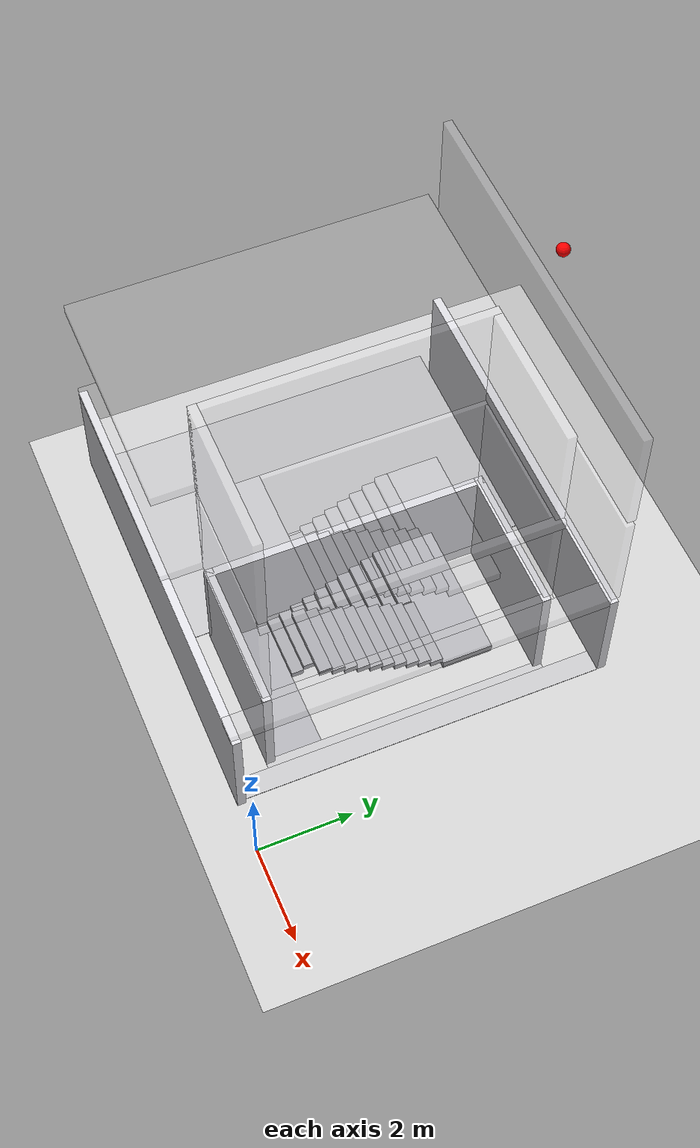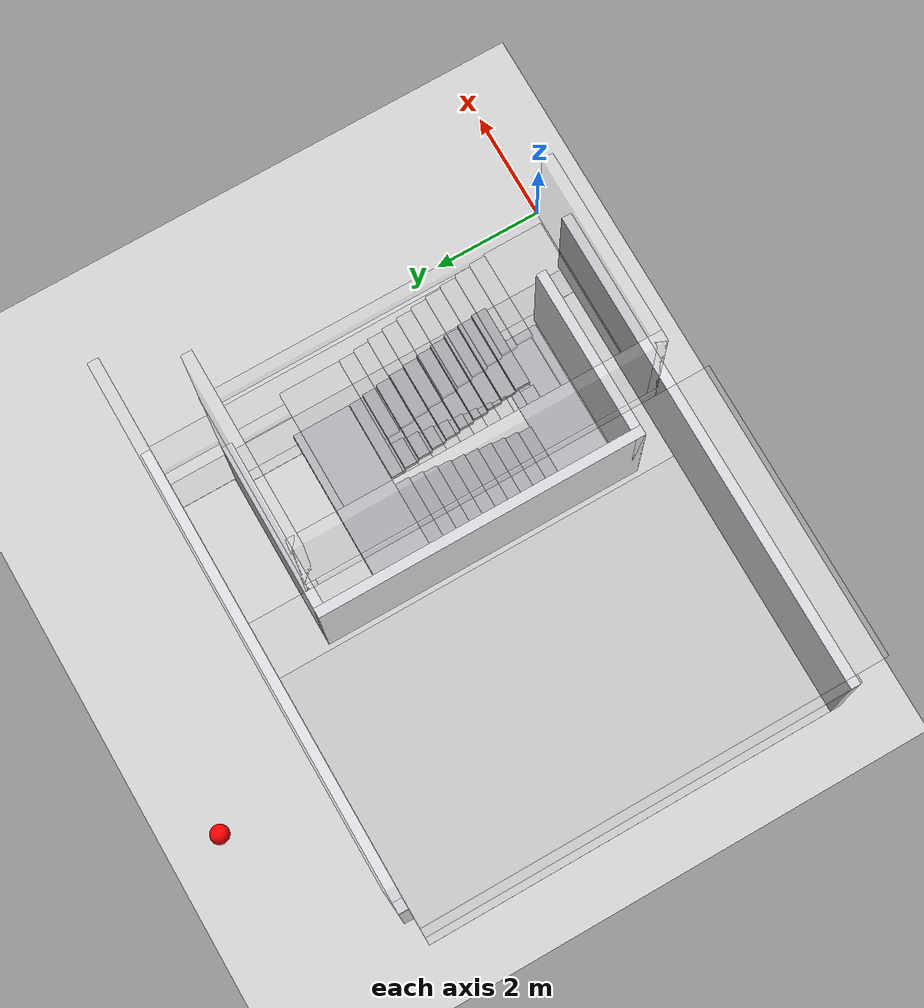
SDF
<sdf version="1.7">
 <world name="generated_world">
  <include><uri>model://sun</uri></include>
  <include><uri>model://ground_plane</uri></include>
  <model name="generated_building">
   <static>true</static>
   <link name="slab_floor_0_1">
    <pose>-7.4700 3.9250 -0.1100 0.0000 0.0000 0.0000</pose>
    <collision name="slab_floor_0_1_collision">
     <geometry><box><size>5.0600 7.8500 0.2200</size></box></geometry>
    </collision>
    <visual name="slab_floor_0_1_visual">
     <geometry><box><size>5.0600 7.8500 0.2200</size></box></geometry>
     <material><ambient>0.76 0.76 0.77 1</ambient><diffuse>0.76 0.76 0.77 1</diffuse></material>
    </visual>
    <gravity>false</gravity>
   </link>
   <link name="slab_floor_0_2">
    <pose>-1.3300 3.9250 -0.1100 0.0000 0.0000 0.0000</pose>
    <collision name="slab_floor_0_2_collision">
     <geometry><box><size>0.4600 7.8500 0.2200</size></box></geometry>
    </collision>
    <visual name="slab_floor_0_2_visual">
     <geometry><box><size>0.4600 7.8500 0.2200</size></box></geometry>
     <material><ambient>0.76 0.76 0.77 1</ambient><diffuse>0.76 0.76 0.77 1</diffuse></material>
    </visual>
    <gravity>false</gravity>
   </link>
   <link name="stair_edge_infill_floor_0">
    <pose>-1.6500 3.8500 -0.1100 0.0000 0.0000 0.0000</pose>
    <collision name="stair_edge_infill_floor_0_collision">
     <geometry><box><size>0.1800 6.0000 0.2200</size></box></geometry>
    </collision>
    <visual name="stair_edge_infill_floor_0_visual">
     <geometry><box><size>0.1800 6.0000 0.2200</size></box></geometry>
     <material><ambient>0.76 0.76 0.77 1</ambient><diffuse>0.76 0.76 0.77 1</diffuse></material>
    </visual>
    <gravity>false</gravity>
   </link>
   <link name="exterior_south_entrance_left">
    <pose>-5.5100 0.0900 1.2250 0.0000 0.0000 0.0000</pose>
    <collision name="exterior_south_entrance_left_collision">
     <geometry><box><size>8.9800 0.1800 2.4500</size></box></geometry>
    </collision>
    <visual name="exterior_south_entrance_left_visual">
     <geometry><box><size>8.9800 0.1800 2.4500</size></box></geometry>
     <material><ambient>0.86 0.86 0.88 1</ambient><diffuse>0.86 0.86 0.88 1</diffuse></material>
    </visual>
    <gravity>false</gravity>
   </link>
   <link name="floor_0_room_0_south_wall">
    <pose>-5.3000 7.9400 1.2250 0.0000 0.0000 0.0000</pose>
    <collision name="floor_0_room_0_south_wall_collision">
     <geometry><box><size>8.4000 0.1800 2.4500</size></box></geometry>
    </collision>
    <visual name="floor_0_room_0_south_wall_visual">
     <geometry><box><size>8.4000 0.1800 2.4500</size></box></geometry>
     <material><ambient>0.86 0.86 0.88 1</ambient><diffuse>0.86 0.86 0.88 1</diffuse></material>
    </visual>
    <gravity>false</gravity>
   </link>
   <link name="stair_core_floor_0_west">
    <pose>-4.7600 3.8500 1.2250 0.0000 0.0000 0.0000</pose>
    <collision name="stair_core_floor_0_west_collision">
     <geometry><box><size>0.1800 6.0000 2.4500</size></box></geometry>
    </collision>
    <visual name="stair_core_floor_0_west_visual">
     <geometry><box><size>0.1800 6.0000 2.4500</size></box></geometry>
     <material><ambient>0.86 0.86 0.88 1</ambient><diffuse>0.86 0.86 0.88 1</diffuse></material>
    </visual>
    <gravity>false</gravity>
   </link>
   <link name="stair_core_floor_0_south">
    <pose>-3.2500 0.9400 1.2250 0.0000 0.0000 0.0000</pose>
    <collision name="stair_core_floor_0_south_collision">
     <geometry><box><size>3.2000 0.1800 2.4500</size></box></geometry>
    </collision>
    <visual name="stair_core_floor_0_south_visual">
     <geometry><box><size>3.2000 0.1800 2.4500</size></box></geometry>
     <material><ambient>0.86 0.86 0.88 1</ambient><diffuse>0.86 0.86 0.88 1</diffuse></material>
    </visual>
    <gravity>false</gravity>
   </link>
   <link name="stair_core_floor_0_north">
    <pose>-3.2500 6.7600 1.2250 0.0000 0.0000 0.0000</pose>
    <collision name="stair_core_floor_0_north_collision">
     <geometry><box><size>3.2000 0.1800 2.4500</size></box></geometry>
    </collision>
    <visual name="stair_core_floor_0_north_visual">
     <geometry><box><size>3.2000 0.1800 2.4500</size></box></geometry>
     <material><ambient>0.86 0.86 0.88 1</ambient><diffuse>0.86 0.86 0.88 1</diffuse></material>
    </visual>
    <gravity>false</gravity>
   </link>
   <link name="slab_floor_1_1">
    <pose>-7.4700 3.9250 2.4900 0.0000 0.0000 0.0000</pose>
    <collision name="slab_floor_1_1_collision">
     <geometry><box><size>5.0600 7.8500 0.2200</size></box></geometry>
    </collision>
    <visual name="slab_floor_1_1_visual">
     <geometry><box><size>5.0600 7.8500 0.2200</size></box></geometry>
     <material><ambient>0.76 0.76 0.77 1</ambient><diffuse>0.76 0.76 0.77 1</diffuse></material>
     <transparency>0.80</transparency>
    </visual>
    <gravity>false</gravity>
   </link>
   <link name="slab_floor_1_2">
    <pose>-1.3300 3.9250 2.4900 0.0000 0.0000 0.0000</pose>
    <collision name="slab_floor_1_2_collision">
     <geometry><box><size>0.4600 7.8500 0.2200</size></box></geometry>
    </collision>
    <visual name="slab_floor_1_2_visual">
     <geometry><box><size>0.4600 7.8500 0.2200</size></box></geometry>
     <material><ambient>0.76 0.76 0.77 1</ambient><diffuse>0.76 0.76 0.77 1</diffuse></material>
     <transparency>0.80</transparency>
    </visual>
    <gravity>false</gravity>
   </link>
   <link name="stair_edge_infill_floor_1">
    <pose>-1.6500 3.8500 2.4900 0.0000 0.0000 0.0000</pose>
    <collision name="stair_edge_infill_floor_1_collision">
     <geometry><box><size>0.1800 6.0000 0.2200</size></box></geometry>
    </collision>
    <visual name="stair_edge_infill_floor_1_visual">
     <geometry><box><size>0.1800 6.0000 0.2200</size></box></geometry>
     <material><ambient>0.76 0.76 0.77 1</ambient><diffuse>0.76 0.76 0.77 1</diffuse></material>
     <transparency>0.80</transparency>
    </visual>
    <gravity>false</gravity>
   </link>
   <link name="floor_1_room_0_south_wall">
    <pose>-5.3000 7.9400 3.8250 0.0000 0.0000 0.0000</pose>
    <collision name="floor_1_room_0_south_wall_collision">
     <geometry><box><size>8.4000 0.1800 2.4500</size></box></geometry>
    </collision>
    <visual name="floor_1_room_0_south_wall_visual">
     <geometry><box><size>8.4000 0.1800 2.4500</size></box></geometry>
     <material><ambient>0.86 0.86 0.88 1</ambient><diffuse>0.86 0.86 0.88 1</diffuse></material>
     <transparency>0.80</transparency>
    </visual>
    <gravity>false</gravity>
   </link>
   <link name="stair_core_floor_1_west">
    <pose>-4.7600 3.8500 3.8250 0.0000 0.0000 0.0000</pose>
    <collision name="stair_core_floor_1_west_collision">
     <geometry><box><size>0.1800 6.0000 2.4500</size></box></geometry>
    </collision>
    <visual name="stair_core_floor_1_west_visual">
     <geometry><box><size>0.1800 6.0000 2.4500</size></box></geometry>
     <material><ambient>0.86 0.86 0.88 1</ambient><diffuse>0.86 0.86 0.88 1</diffuse></material>
     <transparency>0.80</transparency>
    </visual>
    <gravity>false</gravity>
   </link>
   <link name="stair_core_floor_1_south">
    <pose>-3.2500 0.9400 3.8250 0.0000 0.0000 0.0000</pose>
    <collision name="stair_core_floor_1_south_collision">
     <geometry><box><size>3.2000 0.1800 2.4500</size></box></geometry>
    </collision>
    <visual name="stair_core_floor_1_south_visual">
     <geometry><box><size>3.2000 0.1800 2.4500</size></box></geometry>
     <material><ambient>0.86 0.86 0.88 1</ambient><diffuse>0.86 0.86 0.88 1</diffuse></material>
     <transparency>0.80</transparency>
    </visual>
    <gravity>false</gravity>
   </link>
   <link name="stair_core_floor_1_north">
    <pose>-3.2500 6.7600 3.8250 0.0000 0.0000 0.0000</pose>
    <collision name="stair_core_floor_1_north_collision">
     <geometry><box><size>3.2000 0.1800 2.4500</size></box></geometry>
    </collision>
    <visual name="stair_core_floor_1_north_visual">
     <geometry><box><size>3.2000 0.1800 2.4500</size></box></geometry>
     <material><ambient>0.86 0.86 0.88 1</ambient><diffuse>0.86 0.86 0.88 1</diffuse></material>
     <transparency>0.80</transparency>
    </visual>
    <gravity>false</gravity>
   </link>
   <link name="slab_floor_2_1">
    <pose>-7.4700 3.9250 5.0900 0.0000 0.0000 0.0000</pose>
    <collision name="slab_floor_2_1_collision">
     <geometry><box><size>5.0600 7.8500 0.2200</size></box></geometry>
    </collision>
    <visual name="slab_floor_2_1_visual">
     <geometry><box><size>5.0600 7.8500 0.2200</size></box></geometry>
     <material><ambient>0.76 0.76 0.77 1</ambient><diffuse>0.76 0.76 0.77 1</diffuse></material>
     <transparency>0.80</transparency>
    </visual>
    <gravity>false</gravity>
   </link>
   <link name="stair_edge_infill_floor_2">
    <pose>-1.6500 3.8500 5.0900 0.0000 0.0000 0.0000</pose>
    <collision name="stair_edge_infill_floor_2_collision">
     <geometry><box><size>0.1800 6.0000 0.2200</size></box></geometry>
    </collision>
    <visual name="stair_edge_infill_floor_2_visual">
     <geometry><box><size>0.1800 6.0000 0.2200</size></box></geometry>
     <material><ambient>0.76 0.76 0.77 1</ambient><diffuse>0.76 0.76 0.77 1</diffuse></material>
     <transparency>0.80</transparency>
    </visual>
    <gravity>false</gravity>
   </link>
   <link name="floor_2_room_0_south_wall">
    <pose>-5.3000 7.9400 6.4250 0.0000 0.0000 0.0000</pose>
    <collision name="floor_2_room_0_south_wall_collision">
     <geometry><box><size>8.4000 0.1800 2.4500</size></box></geometry>
    </collision>
    <visual name="floor_2_room_0_south_wall_visual">
     <geometry><box><size>8.4000 0.1800 2.4500</size></box></geometry>
     <material><ambient>0.86 0.86 0.88 1</ambient><diffuse>0.86 0.86 0.88 1</diffuse></material>
     <transparency>0.80</transparency>
    </visual>
    <gravity>false</gravity>
   </link>
   <link name="stair_core_floor_2_west">
    <pose>-4.7600 3.8500 6.4250 0.0000 0.0000 0.0000</pose>
    <collision name="stair_core_floor_2_west_collision">
     <geometry><box><size>0.1800 6.0000 2.4500</size></box></geometry>
    </collision>
    <visual name="stair_core_floor_2_west_visual">
     <geometry><box><size>0.1800 6.0000 2.4500</size></box></geometry>
     <material><ambient>0.86 0.86 0.88 1</ambient><diffuse>0.86 0.86 0.88 1</diffuse></material>
     <transparency>0.80</transparency>
    </visual>
    <gravity>false</gravity>
   </link>
   <link name="stair_core_floor_2_south">
    <pose>-3.2500 0.9400 6.4250 0.0000 0.0000 0.0000</pose>
    <collision name="stair_core_floor_2_south_collision">
     <geometry><box><size>3.2000 0.1800 2.4500</size></box></geometry>
    </collision>
    <visual name="stair_core_floor_2_south_visual">
     <geometry><box><size>3.2000 0.1800 2.4500</size></box></geometry>
     <material><ambient>0.86 0.86 0.88 1</ambient><diffuse>0.86 0.86 0.88 1</diffuse></material>
     <transparency>0.80</transparency>
    </visual>
    <gravity>false</gravity>
   </link>
   <link name="stair_core_floor_2_north">
    <pose>-3.2500 6.7600 6.4250 0.0000 0.0000 0.0000</pose>
    <collision name="stair_core_floor_2_north_collision">
     <geometry><box><size>3.2000 0.1800 2.4500</size></box></geometry>
    </collision>
    <visual name="stair_core_floor_2_north_visual">
     <geometry><box><size>3.2000 0.1800 2.4500</size></box></geometry>
     <material><ambient>0.86 0.86 0.88 1</ambient><diffuse>0.86 0.86 0.88 1</diffuse></material>
     <transparency>0.80</transparency>
    </visual>
    <gravity>false</gravity>
   </link>
   <link name="stair_floor_landing_floor_0">
    <pose>-3.2500 1.5500 -0.0900 0.0000 0.0000 0.0000</pose>
    <collision name="stair_floor_landing_floor_0_collision">
     <geometry><box><size>3.0200 1.0000 0.1800</size></box></geometry>
    </collision>
    <visual name="stair_floor_landing_floor_0_visual">
     <geometry><box><size>3.0200 1.0000 0.1800</size></box></geometry>
     <material><ambient>0.68 0.68 0.70 1</ambient><diffuse>0.68 0.68 0.70 1</diffuse></material>
    </visual>
    <gravity>false</gravity>
   </link>
   <link name="stair_floor_landing_floor_1">
    <pose>-3.2500 1.5500 2.5100 0.0000 0.0000 0.0000</pose>
    <collision name="stair_floor_landing_floor_1_collision">
     <geometry><box><size>3.0200 1.0000 0.1800</size></box></geometry>
    </collision>
    <visual name="stair_floor_landing_floor_1_visual">
     <geometry><box><size>3.0200 1.0000 0.1800</size></box></geometry>
     <material><ambient>0.68 0.68 0.70 1</ambient><diffuse>0.68 0.68 0.70 1</diffuse></material>
     <transparency>0.80</transparency>
    </visual>
    <gravity>false</gravity>
   </link>
   <link name="stair_floor_landing_floor_2">
    <pose>-3.2500 1.5500 5.1100 0.0000 0.0000 0.0000</pose>
    <collision name="stair_floor_landing_floor_2_collision">
     <geometry><box><size>3.0200 1.0000 0.1800</size></box></geometry>
    </collision>
    <visual name="stair_floor_landing_floor_2_visual">
     <geometry><box><size>3.0200 1.0000 0.1800</size></box></geometry>
     <material><ambient>0.68 0.68 0.70 1</ambient><diffuse>0.68 0.68 0.70 1</diffuse></material>
     <transparency>0.80</transparency>
    </visual>
    <gravity>false</gravity>
   </link>
   <link name="stair_flight_a_floor_0_step_0">
    <pose>-4.0150 2.1800 0.0650 0.0000 0.0000 0.0000</pose>
    <collision name="stair_flight_a_floor_0_step_0_collision">
     <geometry><box><size>1.4300 0.2600 0.1300</size></box></geometry>
    </collision>
    <visual name="stair_flight_a_floor_0_step_0_visual">
     <geometry><box><size>1.4300 0.2600 0.1300</size></box></geometry>
     <material><ambient>0.64 0.64 0.66 1</ambient><diffuse>0.64 0.64 0.66 1</diffuse></material>
    </visual>
    <gravity>false</gravity>
   </link>
   <link name="stair_flight_a_floor_0_step_1">
    <pose>-4.0150 2.4400 0.1950 0.0000 0.0000 0.0000</pose>
    <collision name="stair_flight_a_floor_0_step_1_collision">
     <geometry><box><size>1.4300 0.2600 0.1300</size></box></geometry>
    </collision>
    <visual name="stair_flight_a_floor_0_step_1_visual">
     <geometry><box><size>1.4300 0.2600 0.1300</size></box></geometry>
     <material><ambient>0.64 0.64 0.66 1</ambient><diffuse>0.64 0.64 0.66 1</diffuse></material>
    </visual>
    <gravity>false</gravity>
   </link>
   <link name="stair_flight_a_floor_0_step_2">
    <pose>-4.0150 2.7000 0.3250 0.0000 0.0000 0.0000</pose>
    <collision name="stair_flight_a_floor_0_step_2_collision">
     <geometry><box><size>1.4300 0.2600 0.1300</size></box></geometry>
    </collision>
    <visual name="stair_flight_a_floor_0_step_2_visual">
     <geometry><box><size>1.4300 0.2600 0.1300</size></box></geometry>
     <material><ambient>0.64 0.64 0.66 1</ambient><diffuse>0.64 0.64 0.66 1</diffuse></material>
    </visual>
    <gravity>false</gravity>
   </link>
   <link name="stair_flight_a_floor_0_step_3">
    <pose>-4.0150 2.9600 0.4550 0.0000 0.0000 0.0000</pose>
    <collision name="stair_flight_a_floor_0_step_3_collision">
     <geometry><box><size>1.4300 0.2600 0.1300</size></box></geometry>
    </collision>
    <visual name="stair_flight_a_floor_0_step_3_visual">
     <geometry><box><size>1.4300 0.2600 0.1300</size></box></geometry>
     <material><ambient>0.64 0.64 0.66 1</ambient><diffuse>0.64 0.64 0.66 1</diffuse></material>
    </visual>
    <gravity>false</gravity>
   </link>
   <link name="stair_flight_a_floor_0_step_4">
    <pose>-4.0150 3.2200 0.5850 0.0000 0.0000 0.0000</pose>
    <collision name="stair_flight_a_floor_0_step_4_collision">
     <geometry><box><size>1.4300 0.2600 0.1300</size></box></geometry>
    </collision>
    <visual name="stair_flight_a_floor_0_step_4_visual">
     <geometry><box><size>1.4300 0.2600 0.1300</size></box></geometry>
     <material><ambient>0.64 0.64 0.66 1</ambient><diffuse>0.64 0.64 0.66 1</diffuse></material>
    </visual>
    <gravity>false</gravity>
   </link>
   <link name="stair_flight_a_floor_0_step_5">
    <pose>-4.0150 3.4800 0.7150 0.0000 0.0000 0.0000</pose>
    <collision name="stair_flight_a_floor_0_step_5_collision">
     <geometry><box><size>1.4300 0.2600 0.1300</size></box></geometry>
    </collision>
    <visual name="stair_flight_a_floor_0_step_5_visual">
     <geometry><box><size>1.4300 0.2600 0.1300</size></box></geometry>
     <material><ambient>0.64 0.64 0.66 1</ambient><diffuse>0.64 0.64 0.66 1</diffuse></material>
    </visual>
    <gravity>false</gravity>
   </link>
   <link name="stair_flight_a_floor_0_step_6">
    <pose>-4.0150 3.7400 0.8450 0.0000 0.0000 0.0000</pose>
    <collision name="stair_flight_a_floor_0_step_6_collision">
     <geometry><box><size>1.4300 0.2600 0.1300</size></box></geometry>
    </collision>
    <visual name="stair_flight_a_floor_0_step_6_visual">
     <geometry><box><size>1.4300 0.2600 0.1300</size></box></geometry>
     <material><ambient>0.64 0.64 0.66 1</ambient><diffuse>0.64 0.64 0.66 1</diffuse></material>
    </visual>
    <gravity>false</gravity>
   </link>
   <link name="stair_flight_a_floor_0_step_7">
    <pose>-4.0150 4.0000 0.9750 0.0000 0.0000 0.0000</pose>
    <collision name="stair_flight_a_floor_0_step_7_collision">
     <geometry><box><size>1.4300 0.2600 0.1300</size></box></geometry>
    </collision>
    <visual name="stair_flight_a_floor_0_step_7_visual">
     <geometry><box><size>1.4300 0.2600 0.1300</size></box></geometry>
     <material><ambient>0.64 0.64 0.66 1</ambient><diffuse>0.64 0.64 0.66 1</diffuse></material>
    </visual>
    <gravity>false</gravity>
   </link>
   <link name="stair_flight_a_floor_0_step_8">
    <pose>-4.0150 4.2600 1.1050 0.0000 0.0000 0.0000</pose>
    <collision name="stair_flight_a_floor_0_step_8_collision">
     <geometry><box><size>1.4300 0.2600 0.1300</size></box></geometry>
    </collision>
    <visual name="stair_flight_a_floor_0_step_8_visual">
     <geometry><box><size>1.4300 0.2600 0.1300</size></box></geometry>
     <material><ambient>0.64 0.64 0.66 1</ambient><diffuse>0.64 0.64 0.66 1</diffuse></material>
    </visual>
    <gravity>false</gravity>
   </link>
   <link name="stair_flight_a_floor_0_step_9">
    <pose>-4.0150 4.5200 1.2350 0.0000 0.0000 0.0000</pose>
    <collision name="stair_flight_a_floor_0_step_9_collision">
     <geometry><box><size>1.4300 0.2600 0.1300</size></box></geometry>
    </collision>
    <visual name="stair_flight_a_floor_0_step_9_visual">
     <geometry><box><size>1.4300 0.2600 0.1300</size></box></geometry>
     <material><ambient>0.64 0.64 0.66 1</ambient><diffuse>0.64 0.64 0.66 1</diffuse></material>
    </visual>
    <gravity>false</gravity>
   </link>
   <link name="stair_turn_landing_floor_0">
    <pose>-3.2500 5.1750 1.2100 0.0000 0.0000 0.0000</pose>
    <collision name="stair_turn_landing_floor_0_collision">
     <geometry><box><size>3.0200 1.0500 0.1800</size></box></geometry>
    </collision>
    <visual name="stair_turn_landing_floor_0_visual">
     <geometry><box><size>3.0200 1.0500 0.1800</size></box></geometry>
     <material><ambient>0.68 0.68 0.70 1</ambient><diffuse>0.68 0.68 0.70 1</diffuse></material>
    </visual>
    <gravity>false</gravity>
   </link>
   <link name="stair_flight_b_floor_0_step_0">
    <pose>-2.4850 4.5200 1.3650 0.0000 0.0000 0.0000</pose>
    <collision name="stair_flight_b_floor_0_step_0_collision">
     <geometry><box><size>1.4300 0.2600 0.1300</size></box></geometry>
    </collision>
    <visual name="stair_flight_b_floor_0_step_0_visual">
     <geometry><box><size>1.4300 0.2600 0.1300</size></box></geometry>
     <material><ambient>0.64 0.64 0.66 1</ambient><diffuse>0.64 0.64 0.66 1</diffuse></material>
    </visual>
    <gravity>false</gravity>
   </link>
   <link name="stair_flight_b_floor_0_step_1">
    <pose>-2.4850 4.2600 1.4950 0.0000 0.0000 0.0000</pose>
    <collision name="stair_flight_b_floor_0_step_1_collision">
     <geometry><box><size>1.4300 0.2600 0.1300</size></box></geometry>
    </collision>
    <visual name="stair_flight_b_floor_0_step_1_visual">
     <geometry><box><size>1.4300 0.2600 0.1300</size></box></geometry>
     <material><ambient>0.64 0.64 0.66 1</ambient><diffuse>0.64 0.64 0.66 1</diffuse></material>
    </visual>
    <gravity>false</gravity>
   </link>
   <link name="stair_flight_b_floor_0_step_2">
    <pose>-2.4850 4.0000 1.6250 0.0000 0.0000 0.0000</pose>
    <collision name="stair_flight_b_floor_0_step_2_collision">
     <geometry><box><size>1.4300 0.2600 0.1300</size></box></geometry>
    </collision>
    <visual name="stair_flight_b_floor_0_step_2_visual">
     <geometry><box><size>1.4300 0.2600 0.1300</size></box></geometry>
     <material><ambient>0.64 0.64 0.66 1</ambient><diffuse>0.64 0.64 0.66 1</diffuse></material>
    </visual>
    <gravity>false</gravity>
   </link>
   <link name="stair_flight_b_floor_0_step_3">
    <pose>-2.4850 3.7400 1.7550 0.0000 0.0000 0.0000</pose>
    <collision name="stair_flight_b_floor_0_step_3_collision">
     <geometry><box><size>1.4300 0.2600 0.1300</size></box></geometry>
    </collision>
    <visual name="stair_flight_b_floor_0_step_3_visual">
     <geometry><box><size>1.4300 0.2600 0.1300</size></box></geometry>
     <material><ambient>0.64 0.64 0.66 1</ambient><diffuse>0.64 0.64 0.66 1</diffuse></material>
    </visual>
    <gravity>false</gravity>
   </link>
   <link name="stair_flight_b_floor_0_step_4">
    <pose>-2.4850 3.4800 1.8850 0.0000 0.0000 0.0000</pose>
    <collision name="stair_flight_b_floor_0_step_4_collision">
     <geometry><box><size>1.4300 0.2600 0.1300</size></box></geometry>
    </collision>
    <visual name="stair_flight_b_floor_0_step_4_visual">
     <geometry><box><size>1.4300 0.2600 0.1300</size></box></geometry>
     <material><ambient>0.64 0.64 0.66 1</ambient><diffuse>0.64 0.64 0.66 1</diffuse></material>
    </visual>
    <gravity>false</gravity>
   </link>
   <link name="stair_flight_b_floor_0_step_5">
    <pose>-2.4850 3.2200 2.0150 0.0000 0.0000 0.0000</pose>
    <collision name="stair_flight_b_floor_0_step_5_collision">
     <geometry><box><size>1.4300 0.2600 0.1300</size></box></geometry>
    </collision>
    <visual name="stair_flight_b_floor_0_step_5_visual">
     <geometry><box><size>1.4300 0.2600 0.1300</size></box></geometry>
     <material><ambient>0.64 0.64 0.66 1</ambient><diffuse>0.64 0.64 0.66 1</diffuse></material>
    </visual>
    <gravity>false</gravity>
   </link>
   <link name="stair_flight_b_floor_0_step_6">
    <pose>-2.4850 2.9600 2.1450 0.0000 0.0000 0.0000</pose>
    <collision name="stair_flight_b_floor_0_step_6_collision">
     <geometry><box><size>1.4300 0.2600 0.1300</size></box></geometry>
    </collision>
    <visual name="stair_flight_b_floor_0_step_6_visual">
     <geometry><box><size>1.4300 0.2600 0.1300</size></box></geometry>
     <material><ambient>0.64 0.64 0.66 1</ambient><diffuse>0.64 0.64 0.66 1</diffuse></material>
    </visual>
    <gravity>false</gravity>
   </link>
   <link name="stair_flight_b_floor_0_step_7">
    <pose>-2.4850 2.7000 2.2750 0.0000 0.0000 0.0000</pose>
    <collision name="stair_flight_b_floor_0_step_7_collision">
     <geometry><box><size>1.4300 0.2600 0.1300</size></box></geometry>
    </collision>
    <visual name="stair_flight_b_floor_0_step_7_visual">
     <geometry><box><size>1.4300 0.2600 0.1300</size></box></geometry>
     <material><ambient>0.64 0.64 0.66 1</ambient><diffuse>0.64 0.64 0.66 1</diffuse></material>
    </visual>
    <gravity>false</gravity>
   </link>
   <link name="stair_flight_b_floor_0_step_8">
    <pose>-2.4850 2.4400 2.4050 0.0000 0.0000 0.0000</pose>
    <collision name="stair_flight_b_floor_0_step_8_collision">
     <geometry><box><size>1.4300 0.2600 0.1300</size></box></geometry>
    </collision>
    <visual name="stair_flight_b_floor_0_step_8_visual">
     <geometry><box><size>1.4300 0.2600 0.1300</size></box></geometry>
     <material><ambient>0.64 0.64 0.66 1</ambient><diffuse>0.64 0.64 0.66 1</diffuse></material>
    </visual>
    <gravity>false</gravity>
   </link>
   <link name="stair_flight_b_floor_0_step_9">
    <pose>-2.4850 2.1800 2.5350 0.0000 0.0000 0.0000</pose>
    <collision name="stair_flight_b_floor_0_step_9_collision">
     <geometry><box><size>1.4300 0.2600 0.1300</size></box></geometry>
    </collision>
    <visual name="stair_flight_b_floor_0_step_9_visual">
     <geometry><box><size>1.4300 0.2600 0.1300</size></box></geometry>
     <material><ambient>0.64 0.64 0.66 1</ambient><diffuse>0.64 0.64 0.66 1</diffuse></material>
    </visual>
    <gravity>false</gravity>
   </link>
   <link name="stair_flight_a_floor_1_step_0">
    <pose>-4.0150 2.1800 2.6650 0.0000 0.0000 0.0000</pose>
    <collision name="stair_flight_a_floor_1_step_0_collision">
     <geometry><box><size>1.4300 0.2600 0.1300</size></box></geometry>
    </collision>
    <visual name="stair_flight_a_floor_1_step_0_visual">
     <geometry><box><size>1.4300 0.2600 0.1300</size></box></geometry>
     <material><ambient>0.64 0.64 0.66 1</ambient><diffuse>0.64 0.64 0.66 1</diffuse></material>
     <transparency>0.80</transparency>
    </visual>
    <gravity>false</gravity>
   </link>
   <link name="stair_flight_a_floor_1_step_1">
    <pose>-4.0150 2.4400 2.7950 0.0000 0.0000 0.0000</pose>
    <collision name="stair_flight_a_floor_1_step_1_collision">
     <geometry><box><size>1.4300 0.2600 0.1300</size></box></geometry>
    </collision>
    <visual name="stair_flight_a_floor_1_step_1_visual">
     <geometry><box><size>1.4300 0.2600 0.1300</size></box></geometry>
     <material><ambient>0.64 0.64 0.66 1</ambient><diffuse>0.64 0.64 0.66 1</diffuse></material>
     <transparency>0.80</transparency>
    </visual>
    <gravity>false</gravity>
   </link>
   <link name="stair_flight_a_floor_1_step_2">
    <pose>-4.0150 2.7000 2.9250 0.0000 0.0000 0.0000</pose>
    <collision name="stair_flight_a_floor_1_step_2_collision">
     <geometry><box><size>1.4300 0.2600 0.1300</size></box></geometry>
    </collision>
    <visual name="stair_flight_a_floor_1_step_2_visual">
     <geometry><box><size>1.4300 0.2600 0.1300</size></box></geometry>
     <material><ambient>0.64 0.64 0.66 1</ambient><diffuse>0.64 0.64 0.66 1</diffuse></material>
     <transparency>0.80</transparency>
    </visual>
    <gravity>false</gravity>
   </link>
   <link name="stair_flight_a_floor_1_step_3">
    <pose>-4.0150 2.9600 3.0550 0.0000 0.0000 0.0000</pose>
    <collision name="stair_flight_a_floor_1_step_3_collision">
     <geometry><box><size>1.4300 0.2600 0.1300</size></box></geometry>
    </collision>
    <visual name="stair_flight_a_floor_1_step_3_visual">
     <geometry><box><size>1.4300 0.2600 0.1300</size></box></geometry>
     <material><ambient>0.64 0.64 0.66 1</ambient><diffuse>0.64 0.64 0.66 1</diffuse></material>
     <transparency>0.80</transparency>
    </visual>
    <gravity>false</gravity>
   </link>
   <link name="stair_flight_a_floor_1_step_4">
    <pose>-4.0150 3.2200 3.1850 0.0000 0.0000 0.0000</pose>
    <collision name="stair_flight_a_floor_1_step_4_collision">
     <geometry><box><size>1.4300 0.2600 0.1300</size></box></geometry>
    </collision>
    <visual name="stair_flight_a_floor_1_step_4_visual">
     <geometry><box><size>1.4300 0.2600 0.1300</size></box></geometry>
     <material><ambient>0.64 0.64 0.66 1</ambient><diffuse>0.64 0.64 0.66 1</diffuse></material>
     <transparency>0.80</transparency>
    </visual>
    <gravity>false</gravity>
   </link>
   <link name="stair_flight_a_floor_1_step_5">
    <pose>-4.0150 3.4800 3.3150 0.0000 0.0000 0.0000</pose>
    <collision name="stair_flight_a_floor_1_step_5_collision">
     <geometry><box><size>1.4300 0.2600 0.1300</size></box></geometry>
    </collision>
    <visual name="stair_flight_a_floor_1_step_5_visual">
     <geometry><box><size>1.4300 0.2600 0.1300</size></box></geometry>
     <material><ambient>0.64 0.64 0.66 1</ambient><diffuse>0.64 0.64 0.66 1</diffuse></material>
     <transparency>0.80</transparency>
    </visual>
    <gravity>false</gravity>
   </link>
   <link name="stair_flight_a_floor_1_step_6">
    <pose>-4.0150 3.7400 3.4450 0.0000 0.0000 0.0000</pose>
    <collision name="stair_flight_a_floor_1_step_6_collision">
     <geometry><box><size>1.4300 0.2600 0.1300</size></box></geometry>
    </collision>
    <visual name="stair_flight_a_floor_1_step_6_visual">
     <geometry><box><size>1.4300 0.2600 0.1300</size></box></geometry>
     <material><ambient>0.64 0.64 0.66 1</ambient><diffuse>0.64 0.64 0.66 1</diffuse></material>
     <transparency>0.80</transparency>
    </visual>
    <gravity>false</gravity>
   </link>
   <link name="stair_flight_a_floor_1_step_7">
    <pose>-4.0150 4.0000 3.5750 0.0000 0.0000 0.0000</pose>
    <collision name="stair_flight_a_floor_1_step_7_collision">
     <geometry><box><size>1.4300 0.2600 0.1300</size></box></geometry>
    </collision>
    <visual name="stair_flight_a_floor_1_step_7_visual">
     <geometry><box><size>1.4300 0.2600 0.1300</size></box></geometry>
     <material><ambient>0.64 0.64 0.66 1</ambient><diffuse>0.64 0.64 0.66 1</diffuse></material>
     <transparency>0.80</transparency>
    </visual>
    <gravity>false</gravity>
   </link>
   <link name="stair_flight_a_floor_1_step_8">
    <pose>-4.0150 4.2600 3.7050 0.0000 0.0000 0.0000</pose>
    <collision name="stair_flight_a_floor_1_step_8_collision">
     <geometry><box><size>1.4300 0.2600 0.1300</size></box></geometry>
    </collision>
    <visual name="stair_flight_a_floor_1_step_8_visual">
     <geometry><box><size>1.4300 0.2600 0.1300</size></box></geometry>
     <material><ambient>0.64 0.64 0.66 1</ambient><diffuse>0.64 0.64 0.66 1</diffuse></material>
     <transparency>0.80</transparency>
    </visual>
    <gravity>false</gravity>
   </link>
   <link name="stair_flight_a_floor_1_step_9">
    <pose>-4.0150 4.5200 3.8350 0.0000 0.0000 0.0000</pose>
    <collision name="stair_flight_a_floor_1_step_9_collision">
     <geometry><box><size>1.4300 0.2600 0.1300</size></box></geometry>
    </collision>
    <visual name="stair_flight_a_floor_1_step_9_visual">
     <geometry><box><size>1.4300 0.2600 0.1300</size></box></geometry>
     <material><ambient>0.64 0.64 0.66 1</ambient><diffuse>0.64 0.64 0.66 1</diffuse></material>
     <transparency>0.80</transparency>
    </visual>
    <gravity>false</gravity>
   </link>
   <link name="stair_turn_landing_floor_1">
    <pose>-3.2500 5.1750 3.8100 0.0000 0.0000 0.0000</pose>
    <collision name="stair_turn_landing_floor_1_collision">
     <geometry><box><size>3.0200 1.0500 0.1800</size></box></geometry>
    </collision>
    <visual name="stair_turn_landing_floor_1_visual">
     <geometry><box><size>3.0200 1.0500 0.1800</size></box></geometry>
     <material><ambient>0.68 0.68 0.70 1</ambient><diffuse>0.68 0.68 0.70 1</diffuse></material>
     <transparency>0.80</transparency>
    </visual>
    <gravity>false</gravity>
   </link>
   <link name="stair_flight_b_floor_1_step_0">
    <pose>-2.4850 4.5200 3.9650 0.0000 0.0000 0.0000</pose>
    <collision name="stair_flight_b_floor_1_step_0_collision">
     <geometry><box><size>1.4300 0.2600 0.1300</size></box></geometry>
    </collision>
    <visual name="stair_flight_b_floor_1_step_0_visual">
     <geometry><box><size>1.4300 0.2600 0.1300</size></box></geometry>
     <material><ambient>0.64 0.64 0.66 1</ambient><diffuse>0.64 0.64 0.66 1</diffuse></material>
     <transparency>0.80</transparency>
    </visual>
    <gravity>false</gravity>
   </link>
   <link name="stair_flight_b_floor_1_step_1">
    <pose>-2.4850 4.2600 4.0950 0.0000 0.0000 0.0000</pose>
    <collision name="stair_flight_b_floor_1_step_1_collision">
     <geometry><box><size>1.4300 0.2600 0.1300</size></box></geometry>
    </collision>
    <visual name="stair_flight_b_floor_1_step_1_visual">
     <geometry><box><size>1.4300 0.2600 0.1300</size></box></geometry>
     <material><ambient>0.64 0.64 0.66 1</ambient><diffuse>0.64 0.64 0.66 1</diffuse></material>
     <transparency>0.80</transparency>
    </visual>
    <gravity>false</gravity>
   </link>
   <link name="stair_flight_b_floor_1_step_2">
    <pose>-2.4850 4.0000 4.2250 0.0000 0.0000 0.0000</pose>
    <collision name="stair_flight_b_floor_1_step_2_collision">
     <geometry><box><size>1.4300 0.2600 0.1300</size></box></geometry>
    </collision>
    <visual name="stair_flight_b_floor_1_step_2_visual">
     <geometry><box><size>1.4300 0.2600 0.1300</size></box></geometry>
     <material><ambient>0.64 0.64 0.66 1</ambient><diffuse>0.64 0.64 0.66 1</diffuse></material>
     <transparency>0.80</transparency>
    </visual>
    <gravity>false</gravity>
   </link>
   <link name="stair_flight_b_floor_1_step_3">
    <pose>-2.4850 3.7400 4.3550 0.0000 0.0000 0.0000</pose>
    <collision name="stair_flight_b_floor_1_step_3_collision">
     <geometry><box><size>1.4300 0.2600 0.1300</size></box></geometry>
    </collision>
    <visual name="stair_flight_b_floor_1_step_3_visual">
     <geometry><box><size>1.4300 0.2600 0.1300</size></box></geometry>
     <material><ambient>0.64 0.64 0.66 1</ambient><diffuse>0.64 0.64 0.66 1</diffuse></material>
     <transparency>0.80</transparency>
    </visual>
    <gravity>false</gravity>
   </link>
   <link name="stair_flight_b_floor_1_step_4">
    <pose>-2.4850 3.4800 4.4850 0.0000 0.0000 0.0000</pose>
    <collision name="stair_flight_b_floor_1_step_4_collision">
     <geometry><box><size>1.4300 0.2600 0.1300</size></box></geometry>
    </collision>
    <visual name="stair_flight_b_floor_1_step_4_visual">
     <geometry><box><size>1.4300 0.2600 0.1300</size></box></geometry>
     <material><ambient>0.64 0.64 0.66 1</ambient><diffuse>0.64 0.64 0.66 1</diffuse></material>
     <transparency>0.80</transparency>
    </visual>
    <gravity>false</gravity>
   </link>
   <link name="stair_flight_b_floor_1_step_5">
    <pose>-2.4850 3.2200 4.6150 0.0000 0.0000 0.0000</pose>
    <collision name="stair_flight_b_floor_1_step_5_collision">
     <geometry><box><size>1.4300 0.2600 0.1300</size></box></geometry>
    </collision>
    <visual name="stair_flight_b_floor_1_step_5_visual">
     <geometry><box><size>1.4300 0.2600 0.1300</size></box></geometry>
     <material><ambient>0.64 0.64 0.66 1</ambient><diffuse>0.64 0.64 0.66 1</diffuse></material>
     <transparency>0.80</transparency>
    </visual>
    <gravity>false</gravity>
   </link>
   <link name="stair_flight_b_floor_1_step_6">
    <pose>-2.4850 2.9600 4.7450 0.0000 0.0000 0.0000</pose>
    <collision name="stair_flight_b_floor_1_step_6_collision">
     <geometry><box><size>1.4300 0.2600 0.1300</size></box></geometry>
    </collision>
    <visual name="stair_flight_b_floor_1_step_6_visual">
     <geometry><box><size>1.4300 0.2600 0.1300</size></box></geometry>
     <material><ambient>0.64 0.64 0.66 1</ambient><diffuse>0.64 0.64 0.66 1</diffuse></material>
     <transparency>0.80</transparency>
    </visual>
    <gravity>false</gravity>
   </link>
   <link name="stair_flight_b_floor_1_step_7">
    <pose>-2.4850 2.7000 4.8750 0.0000 0.0000 0.0000</pose>
    <collision name="stair_flight_b_floor_1_step_7_collision">
     <geometry><box><size>1.4300 0.2600 0.1300</size></box></geometry>
    </collision>
    <visual name="stair_flight_b_floor_1_step_7_visual">
     <geometry><box><size>1.4300 0.2600 0.1300</size></box></geometry>
     <material><ambient>0.64 0.64 0.66 1</ambient><diffuse>0.64 0.64 0.66 1</diffuse></material>
     <transparency>0.80</transparency>
    </visual>
    <gravity>false</gravity>
   </link>
   <link name="stair_flight_b_floor_1_step_8">
    <pose>-2.4850 2.4400 5.0050 0.0000 0.0000 0.0000</pose>
    <collision name="stair_flight_b_floor_1_step_8_collision">
     <geometry><box><size>1.4300 0.2600 0.1300</size></box></geometry>
    </collision>
    <visual name="stair_flight_b_floor_1_step_8_visual">
     <geometry><box><size>1.4300 0.2600 0.1300</size></box></geometry>
     <material><ambient>0.64 0.64 0.66 1</ambient><diffuse>0.64 0.64 0.66 1</diffuse></material>
     <transparency>0.80</transparency>
    </visual>
    <gravity>false</gravity>
   </link>
   <link name="stair_flight_b_floor_1_step_9">
    <pose>-2.4850 2.1800 5.1350 0.0000 0.0000 0.0000</pose>
    <collision name="stair_flight_b_floor_1_step_9_collision">
     <geometry><box><size>1.4300 0.2600 0.1300</size></box></geometry>
    </collision>
    <visual name="stair_flight_b_floor_1_step_9_visual">
     <geometry><box><size>1.4300 0.2600 0.1300</size></box></geometry>
     <material><ambient>0.64 0.64 0.66 1</ambient><diffuse>0.64 0.64 0.66 1</diffuse></material>
     <transparency>0.80</transparency>
    </visual>
    <gravity>false</gravity>
   </link>
  </model>
  <model name="danger_red_sphere_00">
   <static>true</static>
   <pose>-7.440704 9.661362 5.350000 0.000000 0.000000 0.000000</pose>
   <link name="link">
    <collision name="collision"><geometry><sphere><radius>0.150</radius></sphere></geometry></collision>
    <visual name="visual">
     <geometry><sphere><radius>0.150</radius></sphere></geometry>
     <material><ambient>1.0 0.0 0.0 1.0</ambient><diffuse>1.0 0.0 0.0 1.0</diffuse></material>
    </visual>
   </link>
  </model>
 </world>
</sdf>
